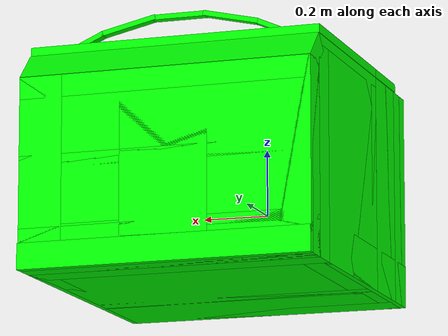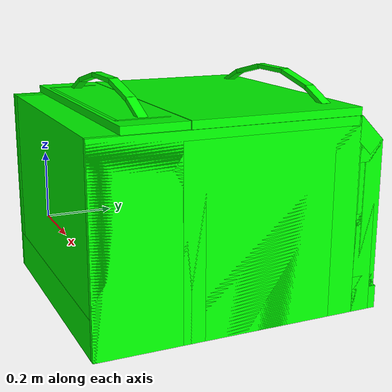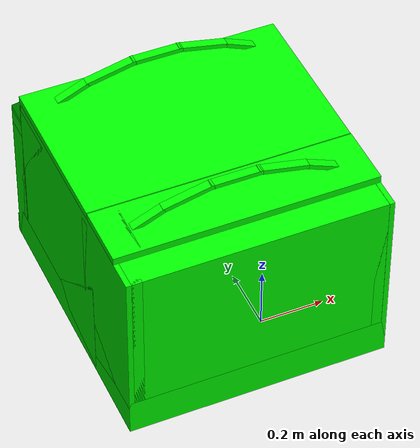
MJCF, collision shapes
<mujoco model="oven_FP1">
  <compiler autolimits="true" boundmass="0.01" angle="radian"/>
  <default>
    <default class="/">
      <default class="__VISUAL_MJT__">
        <geom contype="0" conaffinity="0" group="0"/>
      </default>
      <default class="__STRUCTURAL_MJT__">
        <geom contype="8" conaffinity="15" group="4" friction="0.90000000000000002 0.90000000000000002 0.001" solref="0.025000000000000001 1" solimp="0.998 0.998 0.001"/>
      </default>
      <default class="__DYNAMIC_MJT__">
        <geom contype="1" conaffinity="15" group="4" friction="0.90000000000000002 0.90000000000000002 0.001" solref="0.025000000000000001 1" solimp="0.998 0.998 0.001"/>
      </default>
    </default>
  </default>
  <asset>
    <material name="material_StoveDarkMat" class="/" specular="0.5" shininess="0.5" rgba="0.125 0.125 0.125 1"/>
    <mesh name="oven_FP1_oven_FP1_e2968b02" class="/" file="oven_FP1_oven_FP1_e2968b02/oven_FP1_oven_FP1_e2968b02.obj" scale="1 1 1" inertia="legacy"/>
    <texture name="BrushedIron_AlbedoTransparency" type="2d" file="BrushedIron_AlbedoTransparency.png"/>
    <material name="material_BrushedIron_AlbedoTransparency" class="/" texture="BrushedIron_AlbedoTransparency" specular="0.5" shininess="0.5" rgba="1 1 1 1"/>
    <mesh name="oven_FP1_oven_FP1_drawer_31534942" class="/" file="oven_FP1_oven_FP1_drawer_31534942/oven_FP1_oven_FP1_drawer_31534942.obj" scale="1 1 1" inertia="legacy"/>
    <mesh name="oven_FP1_oven_FP1_drawer_handle" class="/" file="oven_FP1_oven_FP1_drawer_handle/oven_FP1_oven_FP1_drawer_handle.obj" scale="1 1 1" inertia="legacy"/>
    <material name="material_Glass_Green_Mat" class="/" specular="0.5" shininess="0.5" rgba="0.17030709999999999 0.2573529 0.1781112 0.79700000000000004"/>
    <mesh name="oven_FP1_oven_FP1_door_049ab45b_0" class="/" file="oven_FP1_oven_FP1_door_049ab45b/oven_FP1_oven_FP1_door_049ab45b_0.obj" scale="1 1 1" inertia="legacy"/>
    <mesh name="oven_FP1_oven_FP1_door_049ab45b_1" class="/" file="oven_FP1_oven_FP1_door_049ab45b/oven_FP1_oven_FP1_door_049ab45b_1.obj" scale="1 1 1" inertia="shell"/>
    <mesh name="oven_FP1_oven_FP1_door_049ab45b_2" class="/" file="oven_FP1_oven_FP1_door_049ab45b/oven_FP1_oven_FP1_door_049ab45b_2.obj" scale="1 1 1" inertia="legacy"/>
    <mesh name="oven_FP1_oven_FP1_door_handle" class="/" file="oven_FP1_oven_FP1_door_handle/oven_FP1_oven_FP1_door_handle.obj" scale="1 1 1" inertia="legacy"/>
  </asset>
  <worldbody>
    <body name="oven_FP1">
      <body name="oven_FP1_oven_FP1_e2968b02" pos="-0 0 0" quat="1 0 0 0">
        <geom name="oven_FP1_oven_FP1_e2968b02" class="__VISUAL_MJT__" type="mesh" material="material_StoveDarkMat" mesh="oven_FP1_oven_FP1_e2968b02"/>
        <site name="oven_FP1_oven_FP1_e2968b02_Receptacle_0" class="/" type="box" rgba="1 0 0 1" size="0.36402350664138794 0.21337565779685974 0.23599696159362793" pos="0.010000824928283691 0.54694926738739014 0.053003072738647461" quat="0 1 0 0"/>
        <geom name="oven_FP1_oven_FP1_e2968b02_PrimitiveCollider_0" class="__DYNAMIC_MJT__" type="box" size="0.42385166883468628 0.030375123023986816 0.055707801133394241" rgba="0 1 0 1" pos="-0 0.86511683464050293 0.26295852661132812" quat="-0.38268341598791289 0.92387953929493549 0 0"/>
        <geom name="oven_FP1_oven_FP1_e2968b02_PrimitiveCollider_1" class="__DYNAMIC_MJT__" type="box" size="0.42385166883468628 0.46280121803283691 0.061153620481491089" rgba="0 1 0 1" pos="-0 0.46306496858596802 -0.24063897132873535" quat="0 1 0 0"/>
        <geom name="oven_FP1_oven_FP1_e2968b02_PrimitiveCollider_2" class="__DYNAMIC_MJT__" type="box" size="0.42385166883468628 0.042968273162841797 0.29815608263015747" rgba="0 1 0 1" pos="-0 0.8016400933265686 -0.0036365985870361328" quat="0 1 0 0"/>
        <geom name="oven_FP1_oven_FP1_e2968b02_PrimitiveCollider_3" class="__DYNAMIC_MJT__" type="box" size="0.42385166883468628 0.034183740615844727 0.29815608263015747" rgba="0 1 0 1" pos="-0 0.30530768632888794 -0.0036365985870361328" quat="0 1 0 0"/>
        <geom name="oven_FP1_oven_FP1_e2968b02_PrimitiveCollider_4" class="__DYNAMIC_MJT__" type="box" size="0.037629216909408569 0.28674221038818359 0.29815608263015747" rgba="0 1 0 1" pos="-0.38622245192527771 0.55786615610122681 -0.0036365985870361328" quat="0 1 0 0"/>
        <geom name="oven_FP1_oven_FP1_e2968b02_PrimitiveCollider_5" class="__DYNAMIC_MJT__" type="box" size="0.030244439840316772 0.28674221038818359 0.29815608263015747" rgba="0 1 0 1" pos="0.39360725879669189 0.55786615610122681 -0.0036365985870361328" quat="0 1 0 0"/>
        <geom name="oven_FP1_oven_FP1_e2968b02_PrimitiveCollider_6" class="__DYNAMIC_MJT__" type="box" size="0.42385166883468628 0.012427031993865967 0.31230849027633667" rgba="0 1 0 1" pos="-0 0.28278172016143799 0.010515928268432617" quat="0 1 0 0"/>
        <geom name="oven_FP1_oven_FP1_e2968b02_PrimitiveCollider_7" class="__DYNAMIC_MJT__" type="box" size="0.42385166883468628 0.054441928863525391 0.31230849027633667" rgba="0 1 0 1" pos="-0 0.055247128009796143 0.010515928268432617" quat="0 1 0 0"/>
        <geom name="oven_FP1_oven_FP1_e2968b02_PrimitiveCollider_8" class="__DYNAMIC_MJT__" type="box" size="0.025386422872543335 0.1472017765045166 0.31230849027633667" rgba="0 1 0 1" pos="-0.39846524596214294 0.14800697565078735 0.010515928268432617" quat="0 1 0 0"/>
        <geom name="oven_FP1_oven_FP1_e2968b02_PrimitiveCollider_9" class="__DYNAMIC_MJT__" type="box" size="0.025386422872543335 0.1472017765045166 0.31230849027633667" rgba="0 1 0 1" pos="0.39846527576446533 0.14800697565078735 0.010515928268432617" quat="0 1 0 0"/>
        <geom name="oven_FP1_oven_FP1_e2968b02_PrimitiveCollider_10" class="__DYNAMIC_MJT__" type="box" size="0.0083869397640228271 0.41860282421112061 0.31245148181915283" rgba="0 1 0 1" pos="-0.41546472907066345 0.41886657476425171 0.010658740997314453" quat="0 1 0 0"/>
        <geom name="oven_FP1_oven_FP1_e2968b02_PrimitiveCollider_11" class="__DYNAMIC_MJT__" type="box" size="0.0083869397640228271 0.41928279399871826 0.31245148181915283" rgba="0 1 0 1" pos="0.41546475887298584 0.41954654455184937 0.010658740997314453" quat="0 1 0 0"/>
        <geom name="oven_FP1_oven_FP1_e2968b02_PrimitiveCollider_12" class="__DYNAMIC_MJT__" type="box" size="0.42385166883468628 0.0026202201843261719 0.31230849027633667" rgba="0 1 0 1" pos="-0 0.84551388025283813 0.010515928268432617" quat="0 1 0 0"/>
        <geom name="oven_FP1_oven_FP1_e2968b02_PrimitiveCollider_13" class="__DYNAMIC_MJT__" type="box" size="0.42385166883468628 0.032069802284240723 0.27270302176475525" rgba="0 1 0 1" pos="-0 0.87673157453536987 -0.029089689254760742" quat="0 1 0 0"/>
        <geom name="oven_FP1_oven_FP1_e2968b02_PrimitiveCollider_14" class="__DYNAMIC_MJT__" type="box" size="0.42385166883468628 0.040602207183837891 0.27270302176475525" rgba="0 1 0 1" pos="-0 0.88526397943496704 -0.029089689254760742" quat="0 1 0 0"/>
        <geom name="oven_FP1_oven_FP1_e2968b02_PrimitiveCollider_15" class="__DYNAMIC_MJT__" type="box" size="0.063032001256942749 0.040602207183837891 0.23680998384952545" rgba="0 1 0 1" pos="0.36081969738006592 0.88526397943496704 0.0068035125732421875" quat="0 1 0 0"/>
        <geom name="oven_FP1_oven_FP1_e2968b02_PrimitiveCollider_16" class="__DYNAMIC_MJT__" type="box" size="0.063661903142929077 0.040602207183837891 0.23680998384952545" rgba="0 1 0 1" pos="-0.3601897656917572 0.88526397943496704 0.0068035125732421875" quat="0 1 0 0"/>
        <geom name="oven_FP1_oven_FP1_e2968b02_PrimitiveCollider_17" class="__DYNAMIC_MJT__" type="box" size="0.12753710150718689 0.040602207183837891 0.23680998384952545" rgba="0 1 0 1" pos="-0 0.88526397943496704 0.0068035125732421875" quat="0 1 0 0"/>
        <geom name="oven_FP1_oven_FP1_e2968b02_PrimitiveCollider_18" class="__DYNAMIC_MJT__" type="box" size="0.42385166883468628 0.040602207183837891 0.031527034938335419" rgba="0 1 0 1" pos="-0 0.88526397943496704 0.21208643913269043" quat="0 1 0 0"/>
        <geom name="oven_FP1_oven_FP1_e2968b02_PrimitiveCollider_19" class="__DYNAMIC_MJT__" type="box" size="0.42385166883468628 0.040602207183837891 0.022081494331359863" rgba="0 1 0 1" pos="-0 0.88526397943496704 -0.20792508125305176" quat="0 1 0 0"/>
        <geom name="oven_FP1_oven_FP1_e2968b02_PrimitiveCollider_20" class="__DYNAMIC_MJT__" type="box" size="0.42385166883468628 0.040602207183837891 0.019119855016469955" rgba="0 1 0 1" pos="-0 0.88526397943496704 -0.00012326240539550781" quat="0 1 0 0"/>
        <geom name="oven_FP1_oven_FP1_e2968b02_PrimitiveCollider_21" class="__DYNAMIC_MJT__" type="box" size="0.42385166883468628 0.044720888137817383 0.037438720464706421" rgba="0 1 0 1" pos="-0 0.88938266038894653 -0.26435399055480957" quat="0 1 0 0"/>
        <body name="oven_FP1_oven_FP1_drawer_31534942" pos="-1.4901161193847656e-07 0.1935236006975174 0.34739851951599121" quat="1 0 0 0">
          <geom name="oven_FP1_oven_FP1_drawer_31534942" class="__VISUAL_MJT__" type="mesh" material="material_BrushedIron_AlbedoTransparency" mesh="oven_FP1_oven_FP1_drawer_31534942"/>
          <joint name="oven_FP1_joint" class="/" type="slide" pos="-0 0 0" axis="0 0 1" stiffness="0" range="0 0.40899999999999997" damping="0.10000000000000001" frictionloss="0"/>
          <site name="oven_FP1_oven_FP1_drawer_31534942_Receptacle_0" class="/" type="box" rgba="1 0 0 1" size="0.34634870290756226 0.075770922005176544 0.23542237281799316" pos="-0.0076739788055419922 -0.00014850497245788574 -0.25519227981567383" quat="0 1 0 0"/>
          <geom name="oven_FP1_oven_FP1_drawer_31534942_PrimitiveCollider_0" class="__DYNAMIC_MJT__" type="box" size="0.42419517040252686 0.09978969395160675 0.011835837736725807" rgba="0 1 0 1" pos="-0.00031119585037231445 -0.00035104155540466309 -0.010810375213623047" quat="0 0 -1 0"/>
          <geom name="oven_FP1_oven_FP1_drawer_31534942_PrimitiveCollider_1" class="__DYNAMIC_MJT__" type="box" size="0.34849017858505249 0.0051486492156982422 0.25337278842926025" rgba="0 1 0 1" pos="-0.00031119585037231445 -0.081773608922958374 -0.25234723091125488" quat="0 0 -1 0"/>
          <geom name="oven_FP1_oven_FP1_drawer_31534942_PrimitiveCollider_2" class="__DYNAMIC_MJT__" type="box" size="0.0065919160842895508 0.081849455833435059 0.25337278842926025" rgba="0 1 0 1" pos="0.34158703684806824 -0.0050728023052215576 -0.25234723091125488" quat="0 0 -1 0"/>
          <geom name="oven_FP1_oven_FP1_drawer_31534942_PrimitiveCollider_3" class="__DYNAMIC_MJT__" type="box" size="0.0071497559547424316 0.081849455833435059 0.25337278842926025" rgba="0 1 0 1" pos="-0.34165164828300476 -0.0050728023052215576 -0.25234723091125488" quat="0 0 -1 0"/>
          <geom name="oven_FP1_oven_FP1_drawer_31534942_PrimitiveCollider_4" class="__DYNAMIC_MJT__" type="box" size="0.34849017858505249 0.081849455833435059 0.0090801864862442017" rgba="0 1 0 1" pos="-0.00031119585037231445 -0.0050728023052215576 -0.49663996696472168" quat="0 0 -1 0"/>
          <body name="oven_FP1_oven_FP1_drawer_handle" pos="0.0029999946709722281 0 0" quat="1 0 0 0">
            <geom name="oven_FP1_oven_FP1_drawer_handle" class="__VISUAL_MJT__" type="mesh" material="material_BrushedIron_AlbedoTransparency" mesh="oven_FP1_oven_FP1_drawer_handle"/>
            <geom name="oven_FP1_oven_FP1_drawer_handle_PrimitiveCollider_0" class="__DYNAMIC_MJT__" type="box" size="0.082276701927185059 0.014696836471557617 0.0071335993707180023" rgba="0 1 0 1" pos="-0.15438491106033325 0.00054924190044403076 0.055587053298950195" quat="-0.11107311115878206 0 -0.9938122377881593 0"/>
            <geom name="oven_FP1_oven_FP1_drawer_handle_PrimitiveCollider_1" class="__DYNAMIC_MJT__" type="box" size="0.082276694476604462 0.014696836471557617 0.0071335993707180023" rgba="0 1 0 1" pos="0.14758473634719849 0.00065140426158905029 0.055587053298950195" quat="0 0.9938122377881593 0 -0.11107311115878206"/>
            <geom name="oven_FP1_oven_FP1_drawer_handle_PrimitiveCollider_2" class="__DYNAMIC_MJT__" type="box" size="0.054065551608800888 0.014696843922138214 0.0071335993707180023" rgba="0 1 0 1" pos="-0.27969008684158325 0.0005490034818649292 0.016469955444335938" quat="-0.20722464492866108 0 -0.97829338469305327 0"/>
            <geom name="oven_FP1_oven_FP1_drawer_handle_PrimitiveCollider_3" class="__DYNAMIC_MJT__" type="box" size="0.054065540432929993 0.014696836471557617 0.0071335993707180023" rgba="0 1 0 1" pos="0.27289003133773804 0.00065140426158905029 0.016469955444335938" quat="0 0.97829338469305327 0 -0.20722464492866108"/>
            <geom name="oven_FP1_oven_FP1_drawer_handle_PrimitiveCollider_4" class="__DYNAMIC_MJT__" type="box" size="0.082276694476604462 0.014696836471557617 0.0071335993707180023" rgba="0 1 0 1" pos="-0.002411186695098877 0.00054924190044403076 0.072056770324707031" quat="0 0 -1 0"/>
          </body>
        </body>
        <body name="oven_FP1_oven_FP1_door_049ab45b" pos="-0 0.28777077794075012 0.3440086841583252" quat="1 0 0 0">
          <geom name="oven_FP1_oven_FP1_door_049ab45b_0" class="__VISUAL_MJT__" type="mesh" material="material_Glass_Green_Mat" mesh="oven_FP1_oven_FP1_door_049ab45b_0"/>
          <geom name="oven_FP1_oven_FP1_door_049ab45b_1" class="__VISUAL_MJT__" type="mesh" material="material_StoveDarkMat" mesh="oven_FP1_oven_FP1_door_049ab45b_1"/>
          <geom name="oven_FP1_oven_FP1_door_049ab45b_2" class="__VISUAL_MJT__" type="mesh" material="material_BrushedIron_AlbedoTransparency" mesh="oven_FP1_oven_FP1_door_049ab45b_2"/>
          <joint name="oven_FP1_oven_FP1_door_049ab45b__1" class="/" type="hinge" pos="-0 0 0" axis="1 0 0" stiffness="0" range="0 1.5707963267948966" damping="0.10000000000000001" frictionloss="0"/>
          <geom name="oven_FP1_oven_FP1_door_049ab45b_PrimitiveCollider_0" class="__DYNAMIC_MJT__" type="box" size="0.42387089133262634 0.27430284023284912 0.012526065111160278" rgba="0 1 0 1" pos="-0.00098881125450134277 0.28254160284996033 -0.0079102516174316406" quat="0 1 0 0"/>
          <geom name="oven_FP1_oven_FP1_door_049ab45b_PrimitiveCollider_1" class="__DYNAMIC_MJT__" type="box" size="0.0065259933471679688 0.022486746311187744 0.0051020169630646706" rgba="0 1 0 1" pos="0.39200830459594727 0.045184820890426636 -0.031656742095947266" quat="-0.39691163179574213 0.91785682791230638 0 0"/>
          <geom name="oven_FP1_oven_FP1_door_049ab45b_PrimitiveCollider_2" class="__DYNAMIC_MJT__" type="box" size="0.0065259933471679688 0.017690449953079224 0.0051020178943872452" rgba="0 1 0 1" pos="0.39200830459594727 0.014993757009506226 -0.050756216049194336" quat="-0.14050911751727782 0.99007938464272438 0 0"/>
          <geom name="oven_FP1_oven_FP1_door_049ab45b_PrimitiveCollider_3" class="__DYNAMIC_MJT__" type="box" size="0.0065259933471679688 0.015032410621643066 0.0051020178943872452" rgba="0 1 0 1" pos="0.39200830459594727 -0.013696789741516113 -0.052757978439331055" quat="0.094907901719124069 0.99548605725608896 0 0"/>
          <geom name="oven_FP1_oven_FP1_door_049ab45b_PrimitiveCollider_4" class="__DYNAMIC_MJT__" type="box" size="0.0065259933471679688 0.017690449953079224 0.0051020178943872452" rgba="0 1 0 1" pos="0.39200830459594727 -0.041107043623924255 -0.04161381721496582" quat="0.2872533369864847 0.95785464470875181 0 0"/>
          <geom name="oven_FP1_oven_FP1_door_049ab45b_PrimitiveCollider_5" class="__DYNAMIC_MJT__" type="box" size="0.0065259933471679688 0.022486746311187744 0.0051020169630646706" rgba="0 1 0 1" pos="-0.39379167556762695 0.045184820890426636 -0.031656742095947266" quat="-0.39691163179574213 0.91785682791230638 0 0"/>
          <geom name="oven_FP1_oven_FP1_door_049ab45b_PrimitiveCollider_6" class="__DYNAMIC_MJT__" type="box" size="0.0065259933471679688 0.017690449953079224 0.0051020178943872452" rgba="0 1 0 1" pos="-0.39379167556762695 0.014993757009506226 -0.050756216049194336" quat="-0.14050911751727782 0.99007938464272438 0 0"/>
          <geom name="oven_FP1_oven_FP1_door_049ab45b_PrimitiveCollider_7" class="__DYNAMIC_MJT__" type="box" size="0.0065259933471679688 0.015032410621643066 0.0051020178943872452" rgba="0 1 0 1" pos="-0.39379167556762695 -0.013696789741516113 -0.052757978439331055" quat="0.094907901719124069 0.99548605725608896 0 0"/>
          <geom name="oven_FP1_oven_FP1_door_049ab45b_PrimitiveCollider_8" class="__DYNAMIC_MJT__" type="box" size="0.0065259933471679688 0.017690449953079224 0.0051020178943872452" rgba="0 1 0 1" pos="-0.39379167556762695 -0.041107043623924255 -0.04161381721496582" quat="0.2872533369864847 0.95785464470875181 0 0"/>
          <body name="oven_FP1_oven_FP1_door_handle" pos="-0 0.49380525946617126 0.0045697689056396484" quat="1 0 0 0">
            <geom name="oven_FP1_oven_FP1_door_handle" class="__VISUAL_MJT__" type="mesh" material="material_BrushedIron_AlbedoTransparency" mesh="oven_FP1_oven_FP1_door_handle"/>
            <geom name="oven_FP1_oven_FP1_door_handle_PrimitiveCollider_0" class="__DYNAMIC_MJT__" type="box" size="0.082276694476604462 0.014696836471557617 0.0071335993707180023" rgba="0 1 0 1" pos="0.00098884105682373047 0.00054371356964111328 0.071519851684570312" quat="0 0 -1 0"/>
            <geom name="oven_FP1_oven_FP1_door_handle_PrimitiveCollider_1" class="__DYNAMIC_MJT__" type="box" size="0.082276694476604462 0.014696836471557617 0.0071335993707180023" rgba="0 1 0 1" pos="0.15098476409912109 0.00064587593078613281 0.055050373077392578" quat="0 0.9938122377881593 0 -0.11107311115878206"/>
            <geom name="oven_FP1_oven_FP1_door_handle_PrimitiveCollider_2" class="__DYNAMIC_MJT__" type="box" size="0.054065540432929993 0.014696836471557617 0.0071335993707180023" rgba="0 1 0 1" pos="0.27629005908966064 0.00064587593078613281 0.01593327522277832" quat="0 0.97829338469305327 0 -0.20722464492866108"/>
            <geom name="oven_FP1_oven_FP1_door_handle_PrimitiveCollider_3" class="__DYNAMIC_MJT__" type="box" size="0.082276701927185059 0.014696836471557617 0.0071335993707180023" rgba="0 1 0 1" pos="-0.15098476409912109 0.0005435943603515625 0.055050373077392578" quat="-0.11107311115878206 0 -0.9938122377881593 0"/>
            <geom name="oven_FP1_oven_FP1_door_handle_PrimitiveCollider_4" class="__DYNAMIC_MJT__" type="box" size="0.054065551608800888 0.014696843922138214 0.0071335993707180023" rgba="0 1 0 1" pos="-0.27629005908966064 0.00054323673248291016 0.01593327522277832" quat="-0.20722464492866108 0 -0.97829338469305327 0"/>
          </body>
        </body>
      </body>
    </body>
  </worldbody>
  <contact>
    <exclude name="//unnamed_contact_0" body1="oven_FP1_oven_FP1_drawer_31534942" body2="oven_FP1_oven_FP1_e2968b02"/>
    <exclude name="//unnamed_contact_1" body1="oven_FP1_oven_FP1_door_049ab45b" body2="oven_FP1_oven_FP1_e2968b02"/>
  </contact>
</mujoco>
